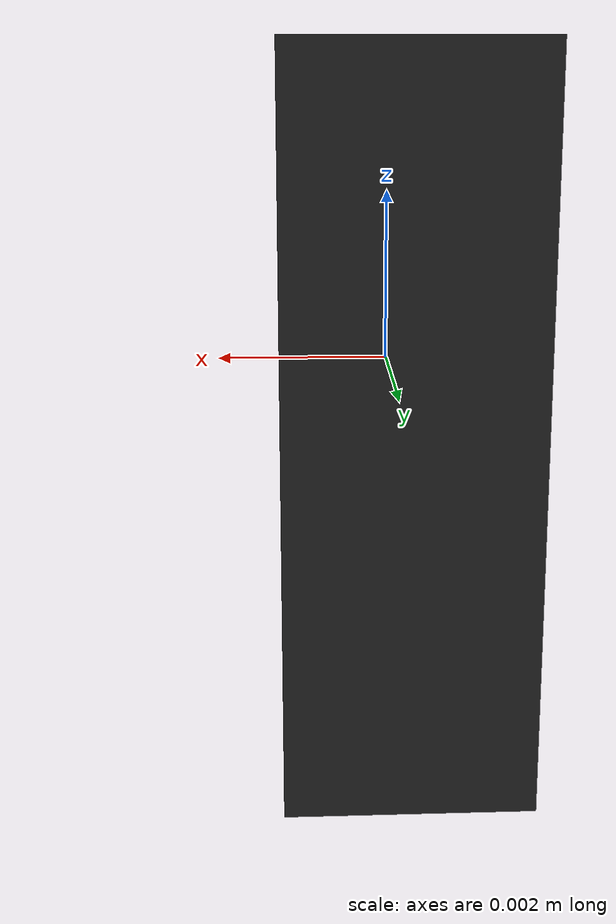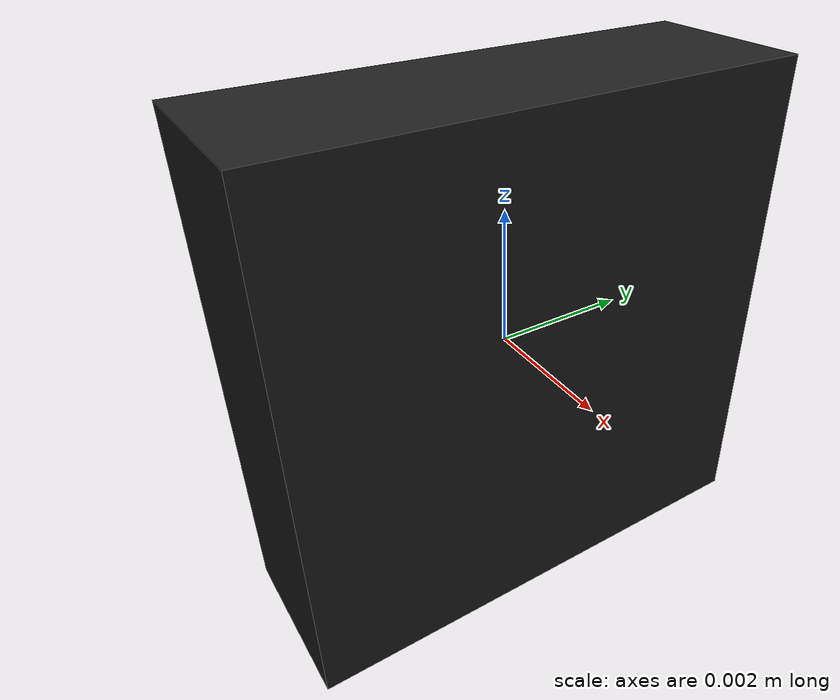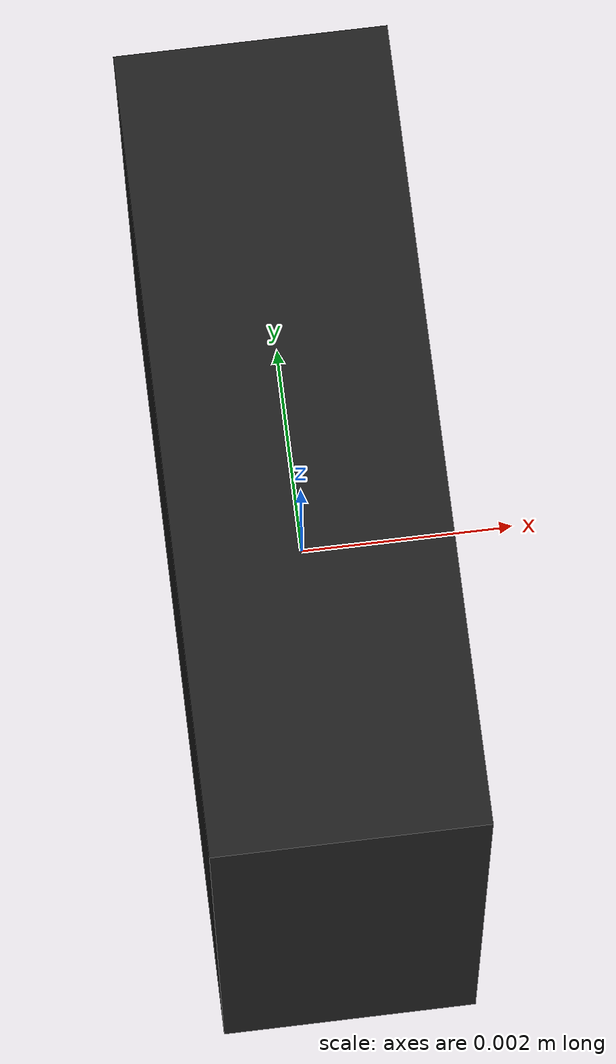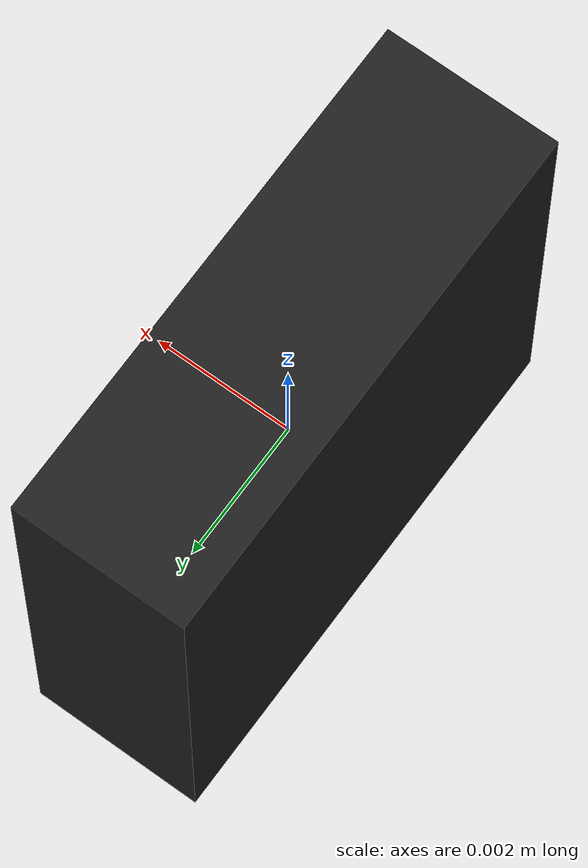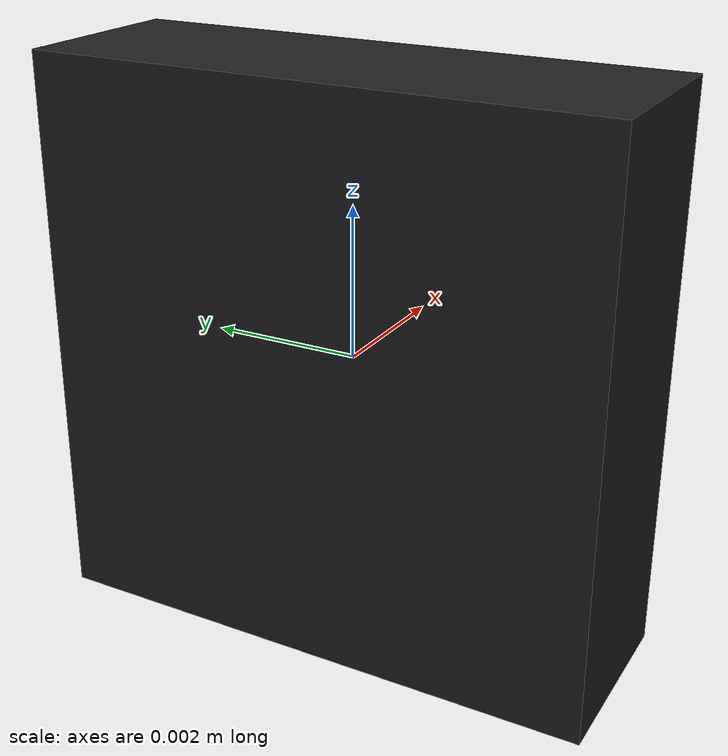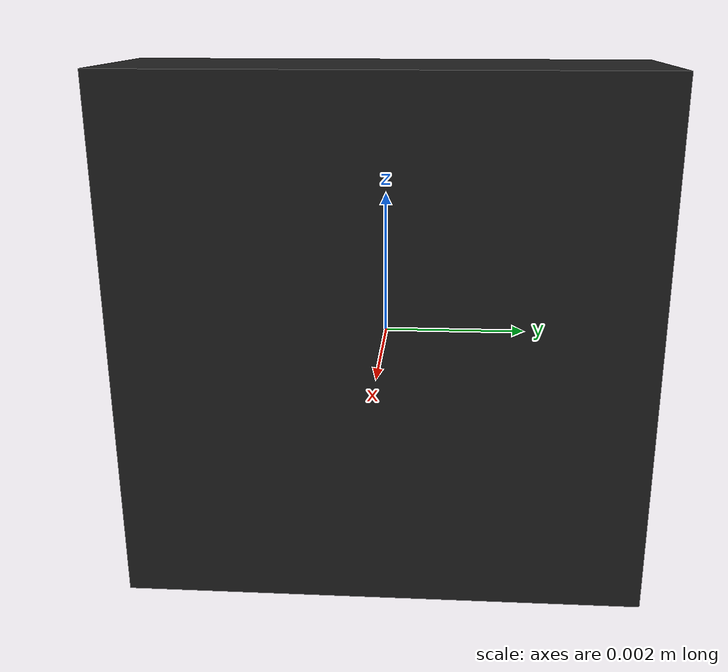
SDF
<?xml version="1.0" ?>
<sdf version="1.4">
  <model name="lidar1">
    <link name="link">
      <pose>0 0 0 0 0 0</pose>
      <inertial>
        <pose>0 0 0 0 0 0</pose>
        <mass>0.01</mass>
        <inertia>
          <ixx>2.1733e-6</ixx>
          <ixy>0</ixy>
          <ixz>0</ixz>
          <iyy>2.1733e-6</iyy>
          <iyz>0</iyz>
          <izz>1.8e-7</izz>
        </inertia>
      </inertial>
      <visual name="visual">
        <geometry>
          <box>
            <size>0.0025 0.0075 0.0075</size>
          </box>
        </geometry>
        <material>
          <script>
            <name>Gazebo/Black</name>
          </script>
        </material>
      </visual>

      <sensor name="laser" type="ray">
        <pose>0 0 0 0 0 0</pose>
        <ray>
          <scan>
            <horizontal>
              <samples>640</samples>
              <resolution>1</resolution>
              <min_angle>0</min_angle>
              <max_angle>0</max_angle>
            </horizontal>
          </scan>
          <range>
            <min>0.04</min>
            <max>4</max>
            <resolution>0.01</resolution>
          </range>
        </ray>
        <plugin name="range_node" filename="libgazebo_ros_range.so">
          <robotNamespace></robotNamespace>
          <topicName>/distance_sensor/lidar1</topicName>
          <frameName>lidar1</frameName>
          <updateRate>50</updateRate>
          <radiation>infrared</radiation>
          <gaussianNoise>0.02</gaussianNoise>
          <fov>0.4712395</fov>
        </plugin>
        <always_on>1</always_on>
        <update_rate>30</update_rate>
        <visualize>true</visualize>
      </sensor>
    </link>
  </model>
</sdf>
